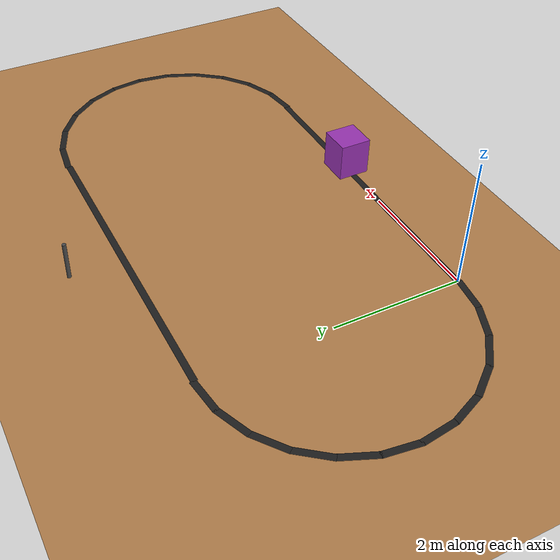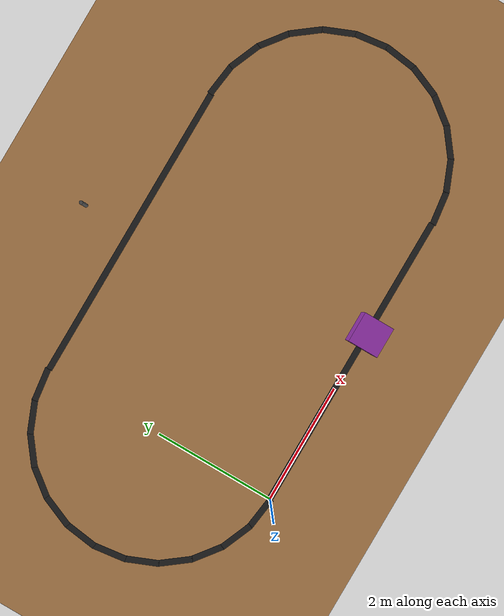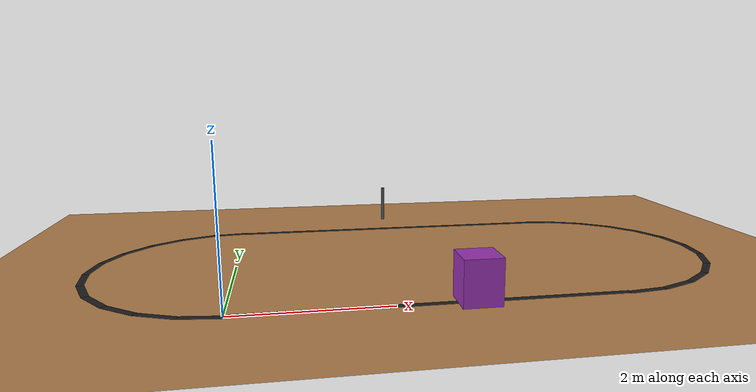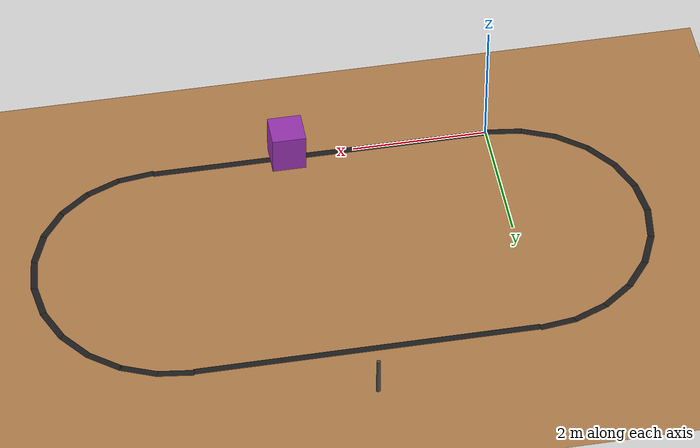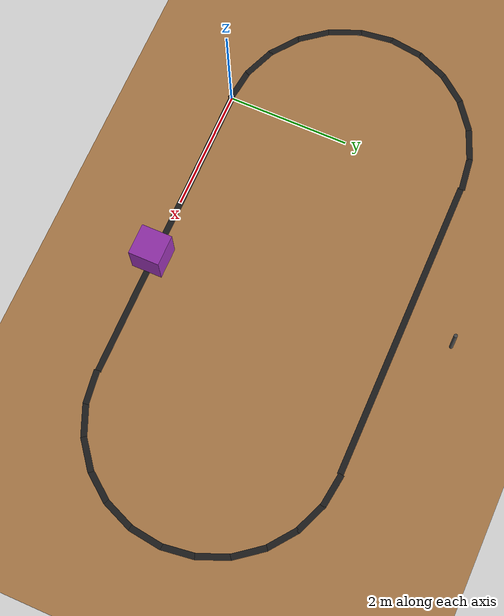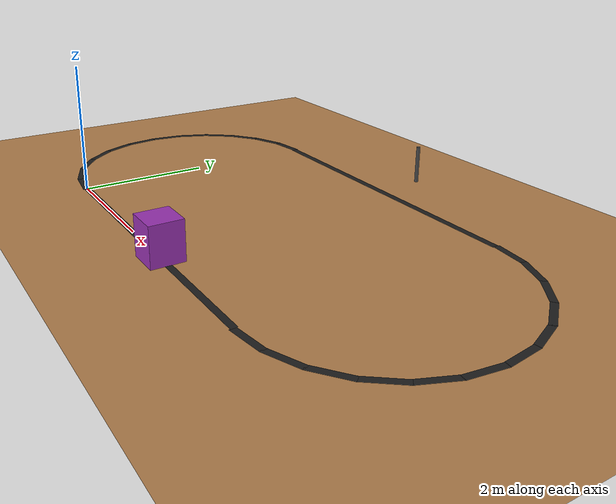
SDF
<sdf version="1.6">
 <world name="oval_loop">
  <plugin name="gazebo_ros_state" filename="libgazebo_ros_state.so"/>
  <light type="directional" name="sun">
   <pose>0 0 10 0 0 0</pose>
   <diffuse>0.60 0.58 0.70 1</diffuse>
   <specular>0.10 0.10 0.12 1</specular>
   <attenuation>
    <range>1000</range>
    <constant>0.9</constant>
    <linear>0.01</linear>
    <quadratic>0.001</quadratic>
   </attenuation>
   <direction>0.2 -0.5 -0.8</direction>
  </light>
  <model name="ground_plane">
   <static>true</static>
   <link name="link">
    <collision name="collision">
     <geometry><plane><normal>0 0 1</normal><size>100 100</size></plane></geometry>
     <surface><friction><ode><mu>100</mu><mu2>50</mu2></ode></friction></surface>
    </collision>
    <visual name="visual">
     <cast_shadows>false</cast_shadows>
     <geometry><plane><normal>0 0 1</normal><size>100 100</size></plane></geometry>
     <material>
      <script><uri>file://media/materials/scripts/gazebo.material</uri><name>Gazebo/Wood</name></script>
     </material>
    </visual>
   </link>
  </model>
  <model name="lane_0">
   <static>true</static>
   <link name="link">
    <visual name="visual">
     <geometry><box><size>5.0000 0.1000 0.001</size></box></geometry>
     <material>
      <script><uri>file://media/materials/scripts/gazebo.material</uri><name>Gazebo/FlatBlack</name></script>
     </material>
    </visual>
   </link>
   <pose>2.5000 0.0000 0.0005 0 0 0.0000</pose>
  </model>
  <model name="lane_1">
   <static>true</static>
   <link name="link">
    <visual name="visual">
     <geometry><box><size>0.5498 0.1000 0.001</size></box></geometry>
     <material>
      <script><uri>file://media/materials/scripts/gazebo.material</uri><name>Gazebo/FlatBlack</name></script>
     </material>
    </visual>
   </link>
   <pose>5.2611 0.0171 0.0005 0 0 0.1309</pose>
  </model>
  <model name="lane_2">
   <static>true</static>
   <link name="link">
    <visual name="visual">
     <geometry><box><size>0.5498 0.1000 0.001</size></box></geometry>
     <material>
      <script><uri>file://media/materials/scripts/gazebo.material</uri><name>Gazebo/FlatBlack</name></script>
     </material>
    </visual>
   </link>
   <pose>5.7654 0.1522 0.0005 0 0 0.3927</pose>
  </model>
  <model name="lane_3">
   <static>true</static>
   <link name="link">
    <visual name="visual">
     <geometry><box><size>0.5498 0.1000 0.001</size></box></geometry>
     <material>
      <script><uri>file://media/materials/scripts/gazebo.material</uri><name>Gazebo/FlatBlack</name></script>
     </material>
    </visual>
   </link>
   <pose>6.2175 0.4133 0.0005 0 0 0.6545</pose>
  </model>
  <model name="lane_4">
   <static>true</static>
   <link name="link">
    <visual name="visual">
     <geometry><box><size>0.5498 0.1000 0.001</size></box></geometry>
     <material>
      <script><uri>file://media/materials/scripts/gazebo.material</uri><name>Gazebo/FlatBlack</name></script>
     </material>
    </visual>
   </link>
   <pose>6.5867 0.7825 0.0005 0 0 0.9163</pose>
  </model>
  <model name="lane_5">
   <static>true</static>
   <link name="link">
    <visual name="visual">
     <geometry><box><size>0.5498 0.1000 0.001</size></box></geometry>
     <material>
      <script><uri>file://media/materials/scripts/gazebo.material</uri><name>Gazebo/FlatBlack</name></script>
     </material>
    </visual>
   </link>
   <pose>6.8478 1.2346 0.0005 0 0 1.1781</pose>
  </model>
  <model name="lane_6">
   <static>true</static>
   <link name="link">
    <visual name="visual">
     <geometry><box><size>0.5498 0.1000 0.001</size></box></geometry>
     <material>
      <script><uri>file://media/materials/scripts/gazebo.material</uri><name>Gazebo/FlatBlack</name></script>
     </material>
    </visual>
   </link>
   <pose>6.9829 1.7389 0.0005 0 0 1.4399</pose>
  </model>
  <model name="lane_7">
   <static>true</static>
   <link name="link">
    <visual name="visual">
     <geometry><box><size>0.5498 0.1000 0.001</size></box></geometry>
     <material>
      <script><uri>file://media/materials/scripts/gazebo.material</uri><name>Gazebo/FlatBlack</name></script>
     </material>
    </visual>
   </link>
   <pose>6.9829 2.2611 0.0005 0 0 1.7017</pose>
  </model>
  <model name="lane_8">
   <static>true</static>
   <link name="link">
    <visual name="visual">
     <geometry><box><size>0.5498 0.1000 0.001</size></box></geometry>
     <material>
      <script><uri>file://media/materials/scripts/gazebo.material</uri><name>Gazebo/FlatBlack</name></script>
     </material>
    </visual>
   </link>
   <pose>6.8478 2.7654 0.0005 0 0 1.9635</pose>
  </model>
  <model name="lane_9">
   <static>true</static>
   <link name="link">
    <visual name="visual">
     <geometry><box><size>0.5498 0.1000 0.001</size></box></geometry>
     <material>
      <script><uri>file://media/materials/scripts/gazebo.material</uri><name>Gazebo/FlatBlack</name></script>
     </material>
    </visual>
   </link>
   <pose>6.5867 3.2175 0.0005 0 0 2.2253</pose>
  </model>
  <model name="lane_10">
   <static>true</static>
   <link name="link">
    <visual name="visual">
     <geometry><box><size>0.5498 0.1000 0.001</size></box></geometry>
     <material>
      <script><uri>file://media/materials/scripts/gazebo.material</uri><name>Gazebo/FlatBlack</name></script>
     </material>
    </visual>
   </link>
   <pose>6.2175 3.5867 0.0005 0 0 2.4871</pose>
  </model>
  <model name="lane_11">
   <static>true</static>
   <link name="link">
    <visual name="visual">
     <geometry><box><size>0.5498 0.1000 0.001</size></box></geometry>
     <material>
      <script><uri>file://media/materials/scripts/gazebo.material</uri><name>Gazebo/FlatBlack</name></script>
     </material>
    </visual>
   </link>
   <pose>5.7654 3.8478 0.0005 0 0 2.7489</pose>
  </model>
  <model name="lane_12">
   <static>true</static>
   <link name="link">
    <visual name="visual">
     <geometry><box><size>0.5498 0.1000 0.001</size></box></geometry>
     <material>
      <script><uri>file://media/materials/scripts/gazebo.material</uri><name>Gazebo/FlatBlack</name></script>
     </material>
    </visual>
   </link>
   <pose>5.2611 3.9829 0.0005 0 0 3.0107</pose>
  </model>
  <model name="lane_13">
   <static>true</static>
   <link name="link">
    <visual name="visual">
     <geometry><box><size>5.0000 0.1000 0.001</size></box></geometry>
     <material>
      <script><uri>file://media/materials/scripts/gazebo.material</uri><name>Gazebo/FlatBlack</name></script>
     </material>
    </visual>
   </link>
   <pose>2.5000 4.0000 0.0005 0 0 3.1416</pose>
  </model>
  <model name="lane_14">
   <static>true</static>
   <link name="link">
    <visual name="visual">
     <geometry><box><size>0.5498 0.1000 0.001</size></box></geometry>
     <material>
      <script><uri>file://media/materials/scripts/gazebo.material</uri><name>Gazebo/FlatBlack</name></script>
     </material>
    </visual>
   </link>
   <pose>-0.2611 3.9829 0.0005 0 0 3.2725</pose>
  </model>
  <model name="lane_15">
   <static>true</static>
   <link name="link">
    <visual name="visual">
     <geometry><box><size>0.5498 0.1000 0.001</size></box></geometry>
     <material>
      <script><uri>file://media/materials/scripts/gazebo.material</uri><name>Gazebo/FlatBlack</name></script>
     </material>
    </visual>
   </link>
   <pose>-0.7654 3.8478 0.0005 0 0 3.5343</pose>
  </model>
  <model name="lane_16">
   <static>true</static>
   <link name="link">
    <visual name="visual">
     <geometry><box><size>0.5498 0.1000 0.001</size></box></geometry>
     <material>
      <script><uri>file://media/materials/scripts/gazebo.material</uri><name>Gazebo/FlatBlack</name></script>
     </material>
    </visual>
   </link>
   <pose>-1.2175 3.5867 0.0005 0 0 3.7961</pose>
  </model>
  <model name="lane_17">
   <static>true</static>
   <link name="link">
    <visual name="visual">
     <geometry><box><size>0.5498 0.1000 0.001</size></box></geometry>
     <material>
      <script><uri>file://media/materials/scripts/gazebo.material</uri><name>Gazebo/FlatBlack</name></script>
     </material>
    </visual>
   </link>
   <pose>-1.5867 3.2175 0.0005 0 0 4.0579</pose>
  </model>
  <model name="lane_18">
   <static>true</static>
   <link name="link">
    <visual name="visual">
     <geometry><box><size>0.5498 0.1000 0.001</size></box></geometry>
     <material>
      <script><uri>file://media/materials/scripts/gazebo.material</uri><name>Gazebo/FlatBlack</name></script>
     </material>
    </visual>
   </link>
   <pose>-1.8478 2.7654 0.0005 0 0 4.3197</pose>
  </model>
  <model name="lane_19">
   <static>true</static>
   <link name="link">
    <visual name="visual">
     <geometry><box><size>0.5498 0.1000 0.001</size></box></geometry>
     <material>
      <script><uri>file://media/materials/scripts/gazebo.material</uri><name>Gazebo/FlatBlack</name></script>
     </material>
    </visual>
   </link>
   <pose>-1.9829 2.2611 0.0005 0 0 4.5815</pose>
  </model>
  <model name="lane_20">
   <static>true</static>
   <link name="link">
    <visual name="visual">
     <geometry><box><size>0.5498 0.1000 0.001</size></box></geometry>
     <material>
      <script><uri>file://media/materials/scripts/gazebo.material</uri><name>Gazebo/FlatBlack</name></script>
     </material>
    </visual>
   </link>
   <pose>-1.9829 1.7389 0.0005 0 0 4.8433</pose>
  </model>
  <model name="lane_21">
   <static>true</static>
   <link name="link">
    <visual name="visual">
     <geometry><box><size>0.5498 0.1000 0.001</size></box></geometry>
     <material>
      <script><uri>file://media/materials/scripts/gazebo.material</uri><name>Gazebo/FlatBlack</name></script>
     </material>
    </visual>
   </link>
   <pose>-1.8478 1.2346 0.0005 0 0 5.1051</pose>
  </model>
  <model name="lane_22">
   <static>true</static>
   <link name="link">
    <visual name="visual">
     <geometry><box><size>0.5498 0.1000 0.001</size></box></geometry>
     <material>
      <script><uri>file://media/materials/scripts/gazebo.material</uri><name>Gazebo/FlatBlack</name></script>
     </material>
    </visual>
   </link>
   <pose>-1.5867 0.7825 0.0005 0 0 5.3669</pose>
  </model>
  <model name="lane_23">
   <static>true</static>
   <link name="link">
    <visual name="visual">
     <geometry><box><size>0.5498 0.1000 0.001</size></box></geometry>
     <material>
      <script><uri>file://media/materials/scripts/gazebo.material</uri><name>Gazebo/FlatBlack</name></script>
     </material>
    </visual>
   </link>
   <pose>-1.2175 0.4133 0.0005 0 0 5.6287</pose>
  </model>
  <model name="lane_24">
   <static>true</static>
   <link name="link">
    <visual name="visual">
     <geometry><box><size>0.5498 0.1000 0.001</size></box></geometry>
     <material>
      <script><uri>file://media/materials/scripts/gazebo.material</uri><name>Gazebo/FlatBlack</name></script>
     </material>
    </visual>
   </link>
   <pose>-0.7654 0.1522 0.0005 0 0 5.8905</pose>
  </model>
  <model name="lane_25">
   <static>true</static>
   <link name="link">
    <visual name="visual">
     <geometry><box><size>0.5498 0.1000 0.001</size></box></geometry>
     <material>
      <script><uri>file://media/materials/scripts/gazebo.material</uri><name>Gazebo/FlatBlack</name></script>
     </material>
    </visual>
   </link>
   <pose>-0.2611 0.0171 0.0005 0 0 6.1523</pose>
  </model>
  <model name="traffic_light_pole">
   <static>true</static>
   <link name="link">
    <collision name="collision">
     <geometry><cylinder><radius>0.03</radius><length>0.600</length></cylinder></geometry>
    </collision>
    <visual name="visual">
     <geometry><cylinder><radius>0.03</radius><length>0.600</length></cylinder></geometry>
     <material>
      <script><uri>file://media/materials/scripts/gazebo.material</uri><name>Gazebo/DarkGrey</name></script>
     </material>
    </visual>
   </link>
   <pose>2.5000 4.8000 0.3000 0 0 0</pose>
  </model>
  <model name="obstacle_box">
   <static>true</static>
   <link name="link">
    <collision name="collision"><geometry><box><size>0.500 0.500 0.600</size></box></geometry></collision>
    <visual name="visual">
     <geometry><box><size>0.500 0.500 0.600</size></box></geometry>
     <material>
      <script><uri>file://media/materials/scripts/gazebo.material</uri><name>Gazebo/Purple</name></script>
     </material>
    </visual>
   </link>
   <pose>3.0000 0.0000 0.3000 0 0 0</pose>
  </model>
 </world>
</sdf>
